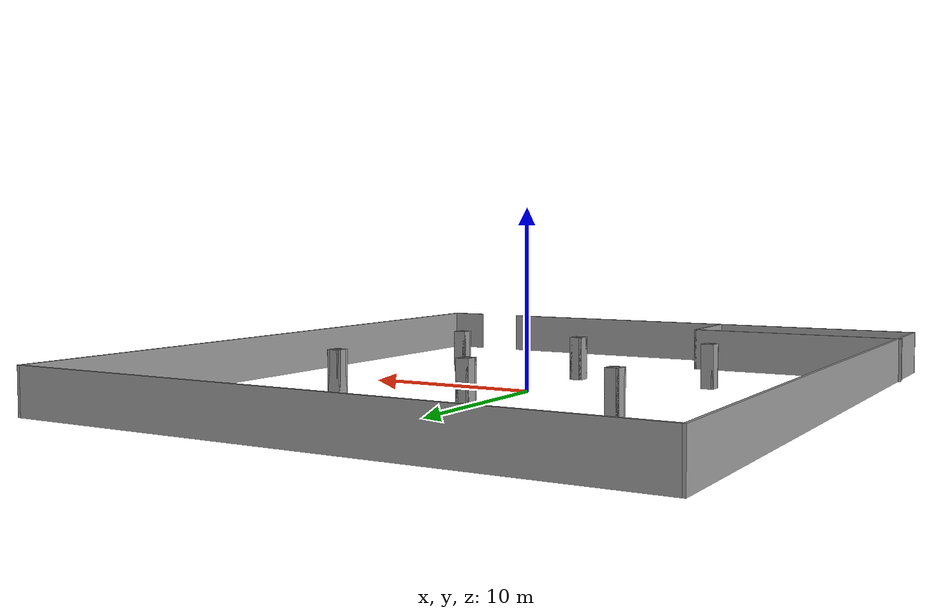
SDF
<?xml version='1.0'?>
<sdf version='1.7'>
  <model name='Jayan_almacen1'>
    <pose>-0.070024 0.009244 0 0 -0 0</pose>
    <link name='Wall_0'>
      <collision name='Wall_0_Collision'>
        <geometry>
          <box>
            <size>28.25 0.15 2.5</size>
          </box>
        </geometry>
        <pose>0 0 1.25 0 -0 0</pose>
      </collision>
      <visual name='Wall_0_Visual'>
        <pose>0 0 1.25 0 -0 0</pose>
        <geometry>
          <box>
            <size>28.25 0.15 2.5</size>
          </box>
        </geometry>
        <material>
          <script>
            <uri>file://media/materials/scripts/gazebo.material</uri>
            <name>Gazebo/Grey</name>
          </script>
          <ambient>1 1 1 1</ambient>
        </material>
        <meta>
          <layer>0</layer>
        </meta>
      </visual>
      <pose>-2.54661 -19.0194 0 0 -0 3.14159</pose>
    </link>
    <link name='Wall_1'>
      <collision name='Wall_1_Collision'>
        <geometry>
          <box>
            <size>38.25 0.15 2.5</size>
          </box>
        </geometry>
        <pose>0 0 1.25 0 -0 0</pose>
      </collision>
      <visual name='Wall_1_Visual'>
        <pose>0 0 1.25 0 -0 0</pose>
        <geometry>
          <box>
            <size>38.25 0.15 2.5</size>
          </box>
        </geometry>
        <material>
          <script>
            <uri>file://media/materials/scripts/gazebo.material</uri>
            <name>Gazebo/Grey</name>
          </script>
          <ambient>1 1 1 1</ambient>
        </material>
        <meta>
          <layer>0</layer>
        </meta>
      </visual>
      <pose>-16.5966 0.030636 0 0 -0 1.5708</pose>
    </link>
    <link name='Wall_11'>
      <collision name='Wall_11_Collision'>
        <geometry>
          <box>
            <size>0.75 0.15 2.5</size>
          </box>
        </geometry>
        <pose>0 0 1.25 0 -0 0</pose>
      </collision>
      <visual name='Wall_11_Visual'>
        <pose>0 0 1.25 0 -0 0</pose>
        <geometry>
          <box>
            <size>0.75 0.15 2.5</size>
          </box>
        </geometry>
        <material>
          <script>
            <uri>file://media/materials/scripts/gazebo.material</uri>
            <name>Gazebo/Grey</name>
          </script>
          <ambient>1 1 1 1</ambient>
        </material>
        <meta>
          <layer>0</layer>
        </meta>
      </visual>
      <pose>-8.37145 -6.24499 0 0 -0 1.5708</pose>
    </link>
    <link name='Wall_12'>
      <collision name='Wall_12_Collision'>
        <geometry>
          <box>
            <size>0.75 0.15 2.5</size>
          </box>
        </geometry>
        <pose>0 0 1.25 0 -0 0</pose>
      </collision>
      <visual name='Wall_12_Visual'>
        <pose>0 0 1.25 0 -0 0</pose>
        <geometry>
          <box>
            <size>0.75 0.15 2.5</size>
          </box>
        </geometry>
        <material>
          <script>
            <uri>file://media/materials/scripts/gazebo.material</uri>
            <name>Gazebo/Grey</name>
          </script>
          <ambient>1 1 1 1</ambient>
        </material>
        <meta>
          <layer>0</layer>
        </meta>
      </visual>
      <pose>-8.07145 -5.94499 0 0 -0 0</pose>
    </link>
    <link name='Wall_13'>
      <collision name='Wall_13_Collision'>
        <geometry>
          <box>
            <size>0.75 0.15 2.5</size>
          </box>
        </geometry>
        <pose>0 0 1.25 0 -0 0</pose>
      </collision>
      <visual name='Wall_13_Visual'>
        <pose>0 0 1.25 0 -0 0</pose>
        <geometry>
          <box>
            <size>0.75 0.15 2.5</size>
          </box>
        </geometry>
        <material>
          <script>
            <uri>file://media/materials/scripts/gazebo.material</uri>
            <name>Gazebo/Grey</name>
          </script>
          <ambient>1 1 1 1</ambient>
        </material>
        <meta>
          <layer>0</layer>
        </meta>
      </visual>
      <pose>-7.77145 -6.24499 0 0 -0 -1.5708</pose>
    </link>
    <link name='Wall_14'>
      <collision name='Wall_14_Collision'>
        <geometry>
          <box>
            <size>0.75 0.15 2.5</size>
          </box>
        </geometry>
        <pose>0 0 1.25 0 -0 0</pose>
      </collision>
      <visual name='Wall_14_Visual'>
        <pose>0 0 1.25 0 -0 0</pose>
        <geometry>
          <box>
            <size>0.75 0.15 2.5</size>
          </box>
        </geometry>
        <material>
          <script>
            <uri>file://media/materials/scripts/gazebo.material</uri>
            <name>Gazebo/Grey</name>
          </script>
          <ambient>1 1 1 1</ambient>
        </material>
        <meta>
          <layer>0</layer>
        </meta>
      </visual>
      <pose>-8.07145 -6.54499 0 0 -0 3.14159</pose>
    </link>
    <link name='Wall_18'>
      <collision name='Wall_18_Collision'>
        <geometry>
          <box>
            <size>0.75 0.15 2.5</size>
          </box>
        </geometry>
        <pose>0 0 1.25 0 -0 0</pose>
      </collision>
      <visual name='Wall_18_Visual'>
        <pose>0 0 1.25 0 -0 0</pose>
        <geometry>
          <box>
            <size>0.75 0.15 2.5</size>
          </box>
        </geometry>
        <material>
          <script>
            <uri>file://media/materials/scripts/gazebo.material</uri>
            <name>Gazebo/Grey</name>
          </script>
          <ambient>1 1 1 1</ambient>
        </material>
        <meta>
          <layer>0</layer>
        </meta>
      </visual>
      <pose>-0.227782 -6.22231 0 0 -0 1.5708</pose>
    </link>
    <link name='Wall_19'>
      <collision name='Wall_19_Collision'>
        <geometry>
          <box>
            <size>0.75 0.15 2.5</size>
          </box>
        </geometry>
        <pose>0 0 1.25 0 -0 0</pose>
      </collision>
      <visual name='Wall_19_Visual'>
        <pose>0 0 1.25 0 -0 0</pose>
        <geometry>
          <box>
            <size>0.75 0.15 2.5</size>
          </box>
        </geometry>
        <material>
          <script>
            <uri>file://media/materials/scripts/gazebo.material</uri>
            <name>Gazebo/Grey</name>
          </script>
          <ambient>1 1 1 1</ambient>
        </material>
        <meta>
          <layer>0</layer>
        </meta>
      </visual>
      <pose>0.072218 -5.92231 0 0 -0 0</pose>
    </link>
    <link name='Wall_2'>
      <collision name='Wall_2_Collision'>
        <geometry>
          <box>
            <size>33.5 0.15 2.5</size>
          </box>
        </geometry>
        <pose>0 0 1.25 0 -0 0</pose>
      </collision>
      <visual name='Wall_2_Visual'>
        <pose>0 0 1.25 0 -0 0</pose>
        <geometry>
          <box>
            <size>33.5 0.15 2.5</size>
          </box>
        </geometry>
        <material>
          <script>
            <uri>file://media/materials/scripts/gazebo.material</uri>
            <name>Gazebo/Grey</name>
          </script>
          <ambient>1 1 1 1</ambient>
        </material>
        <meta>
          <layer>0</layer>
        </meta>
      </visual>
      <pose>0.078386 19.0806 0 0 -0 0</pose>
    </link>
    <link name='Wall_20'>
      <collision name='Wall_20_Collision'>
        <geometry>
          <box>
            <size>0.75 0.15 2.5</size>
          </box>
        </geometry>
        <pose>0 0 1.25 0 -0 0</pose>
      </collision>
      <visual name='Wall_20_Visual'>
        <pose>0 0 1.25 0 -0 0</pose>
        <geometry>
          <box>
            <size>0.75 0.15 2.5</size>
          </box>
        </geometry>
        <material>
          <script>
            <uri>file://media/materials/scripts/gazebo.material</uri>
            <name>Gazebo/Grey</name>
          </script>
          <ambient>1 1 1 1</ambient>
        </material>
        <meta>
          <layer>0</layer>
        </meta>
      </visual>
      <pose>0.372218 -6.22231 0 0 -0 -1.5708</pose>
    </link>
    <link name='Wall_21'>
      <collision name='Wall_21_Collision'>
        <geometry>
          <box>
            <size>0.75 0.15 2.5</size>
          </box>
        </geometry>
        <pose>0 0 1.25 0 -0 0</pose>
      </collision>
      <visual name='Wall_21_Visual'>
        <pose>0 0 1.25 0 -0 0</pose>
        <geometry>
          <box>
            <size>0.75 0.15 2.5</size>
          </box>
        </geometry>
        <material>
          <script>
            <uri>file://media/materials/scripts/gazebo.material</uri>
            <name>Gazebo/Grey</name>
          </script>
          <ambient>1 1 1 1</ambient>
        </material>
        <meta>
          <layer>0</layer>
        </meta>
      </visual>
      <pose>0.072218 -6.52231 0 0 -0 3.14159</pose>
    </link>
    <link name='Wall_23'>
      <collision name='Wall_23_Collision'>
        <geometry>
          <box>
            <size>0.75 0.15 2.5</size>
          </box>
        </geometry>
        <pose>0 0 1.25 0 -0 0</pose>
      </collision>
      <visual name='Wall_23_Visual'>
        <pose>0 0 1.25 0 -0 0</pose>
        <geometry>
          <box>
            <size>0.75 0.15 2.5</size>
          </box>
        </geometry>
        <material>
          <script>
            <uri>file://media/materials/scripts/gazebo.material</uri>
            <name>Gazebo/Grey</name>
          </script>
          <ambient>1 1 1 1</ambient>
        </material>
        <meta>
          <layer>0</layer>
        </meta>
      </visual>
      <pose>7.84783 -6.22231 0 0 -0 1.5708</pose>
    </link>
    <link name='Wall_24'>
      <collision name='Wall_24_Collision'>
        <geometry>
          <box>
            <size>0.75 0.15 2.5</size>
          </box>
        </geometry>
        <pose>0 0 1.25 0 -0 0</pose>
      </collision>
      <visual name='Wall_24_Visual'>
        <pose>0 0 1.25 0 -0 0</pose>
        <geometry>
          <box>
            <size>0.75 0.15 2.5</size>
          </box>
        </geometry>
        <material>
          <script>
            <uri>file://media/materials/scripts/gazebo.material</uri>
            <name>Gazebo/Grey</name>
          </script>
          <ambient>1 1 1 1</ambient>
        </material>
        <meta>
          <layer>0</layer>
        </meta>
      </visual>
      <pose>8.14783 -5.92231 0 0 -0 0</pose>
    </link>
    <link name='Wall_25'>
      <collision name='Wall_25_Collision'>
        <geometry>
          <box>
            <size>0.75 0.15 2.5</size>
          </box>
        </geometry>
        <pose>0 0 1.25 0 -0 0</pose>
      </collision>
      <visual name='Wall_25_Visual'>
        <pose>0 0 1.25 0 -0 0</pose>
        <geometry>
          <box>
            <size>0.75 0.15 2.5</size>
          </box>
        </geometry>
        <material>
          <script>
            <uri>file://media/materials/scripts/gazebo.material</uri>
            <name>Gazebo/Grey</name>
          </script>
          <ambient>1 1 1 1</ambient>
        </material>
        <meta>
          <layer>0</layer>
        </meta>
      </visual>
      <pose>8.44783 -6.22231 0 0 -0 -1.5708</pose>
    </link>
    <link name='Wall_26'>
      <collision name='Wall_26_Collision'>
        <geometry>
          <box>
            <size>0.75 0.15 2.5</size>
          </box>
        </geometry>
        <pose>0 0 1.25 0 -0 0</pose>
      </collision>
      <visual name='Wall_26_Visual'>
        <pose>0 0 1.25 0 -0 0</pose>
        <geometry>
          <box>
            <size>0.75 0.15 2.5</size>
          </box>
        </geometry>
        <material>
          <script>
            <uri>file://media/materials/scripts/gazebo.material</uri>
            <name>Gazebo/Grey</name>
          </script>
          <ambient>1 1 1 1</ambient>
        </material>
        <meta>
          <layer>0</layer>
        </meta>
      </visual>
      <pose>8.14783 -6.52231 0 0 -0 3.14159</pose>
    </link>
    <link name='Wall_28'>
      <collision name='Wall_28_Collision'>
        <geometry>
          <box>
            <size>0.75 0.15 2.5</size>
          </box>
        </geometry>
        <pose>0 0 1.25 0 -0 0</pose>
      </collision>
      <visual name='Wall_28_Visual'>
        <pose>0 0 1.25 0 -0 0</pose>
        <geometry>
          <box>
            <size>0.75 0.15 2.5</size>
          </box>
        </geometry>
        <material>
          <script>
            <uri>file://media/materials/scripts/gazebo.material</uri>
            <name>Gazebo/Grey</name>
          </script>
          <ambient>1 1 1 1</ambient>
        </material>
        <meta>
          <layer>0</layer>
        </meta>
      </visual>
      <pose>-8.35395 6.17711 0 0 -0 1.5708</pose>
    </link>
    <link name='Wall_29'>
      <collision name='Wall_29_Collision'>
        <geometry>
          <box>
            <size>0.75 0.15 2.5</size>
          </box>
        </geometry>
        <pose>0 0 1.25 0 -0 0</pose>
      </collision>
      <visual name='Wall_29_Visual'>
        <pose>0 0 1.25 0 -0 0</pose>
        <geometry>
          <box>
            <size>0.75 0.15 2.5</size>
          </box>
        </geometry>
        <material>
          <script>
            <uri>file://media/materials/scripts/gazebo.material</uri>
            <name>Gazebo/Grey</name>
          </script>
          <ambient>1 1 1 1</ambient>
        </material>
        <meta>
          <layer>0</layer>
        </meta>
      </visual>
      <pose>-8.05395 6.47711 0 0 -0 0</pose>
    </link>
    <link name='Wall_3'>
      <collision name='Wall_3_Collision'>
        <geometry>
          <box>
            <size>38 0.15 2.5</size>
          </box>
        </geometry>
        <pose>0 0 1.25 0 -0 0</pose>
      </collision>
      <visual name='Wall_3_Visual'>
        <pose>0 0 1.25 0 -0 0</pose>
        <geometry>
          <box>
            <size>38 0.15 2.5</size>
          </box>
        </geometry>
        <material>
          <script>
            <uri>file://media/materials/scripts/gazebo.material</uri>
            <name>Gazebo/Grey</name>
          </script>
          <ambient>1 1 1 1</ambient>
        </material>
        <meta>
          <layer>0</layer>
        </meta>
      </visual>
      <pose>16.7534 0.155636 0 0 -0 -1.5708</pose>
    </link>
    <link name='Wall_30'>
      <collision name='Wall_30_Collision'>
        <geometry>
          <box>
            <size>0.75 0.15 2.5</size>
          </box>
        </geometry>
        <pose>0 0 1.25 0 -0 0</pose>
      </collision>
      <visual name='Wall_30_Visual'>
        <pose>0 0 1.25 0 -0 0</pose>
        <geometry>
          <box>
            <size>0.75 0.15 2.5</size>
          </box>
        </geometry>
        <material>
          <script>
            <uri>file://media/materials/scripts/gazebo.material</uri>
            <name>Gazebo/Grey</name>
          </script>
          <ambient>1 1 1 1</ambient>
        </material>
        <meta>
          <layer>0</layer>
        </meta>
      </visual>
      <pose>-7.75395 6.17711 0 0 -0 -1.5708</pose>
    </link>
    <link name='Wall_31'>
      <collision name='Wall_31_Collision'>
        <geometry>
          <box>
            <size>0.75 0.15 2.5</size>
          </box>
        </geometry>
        <pose>0 0 1.25 0 -0 0</pose>
      </collision>
      <visual name='Wall_31_Visual'>
        <pose>0 0 1.25 0 -0 0</pose>
        <geometry>
          <box>
            <size>0.75 0.15 2.5</size>
          </box>
        </geometry>
        <material>
          <script>
            <uri>file://media/materials/scripts/gazebo.material</uri>
            <name>Gazebo/Grey</name>
          </script>
          <ambient>1 1 1 1</ambient>
        </material>
        <meta>
          <layer>0</layer>
        </meta>
      </visual>
      <pose>-8.05395 5.87711 0 0 -0 3.14159</pose>
    </link>
    <link name='Wall_33'>
      <collision name='Wall_33_Collision'>
        <geometry>
          <box>
            <size>0.75 0.15 2.5</size>
          </box>
        </geometry>
        <pose>0 0 1.25 0 -0 0</pose>
      </collision>
      <visual name='Wall_33_Visual'>
        <pose>0 0 1.25 0 -0 0</pose>
        <geometry>
          <box>
            <size>0.75 0.15 2.5</size>
          </box>
        </geometry>
        <material>
          <script>
            <uri>file://media/materials/scripts/gazebo.material</uri>
            <name>Gazebo/Grey</name>
          </script>
          <ambient>1 1 1 1</ambient>
        </material>
        <meta>
          <layer>0</layer>
        </meta>
      </visual>
      <pose>-0.22705 6.19684 0 0 -0 1.5708</pose>
    </link>
    <link name='Wall_34'>
      <collision name='Wall_34_Collision'>
        <geometry>
          <box>
            <size>0.75 0.15 2.5</size>
          </box>
        </geometry>
        <pose>0 0 1.25 0 -0 0</pose>
      </collision>
      <visual name='Wall_34_Visual'>
        <pose>0 0 1.25 0 -0 0</pose>
        <geometry>
          <box>
            <size>0.75 0.15 2.5</size>
          </box>
        </geometry>
        <material>
          <script>
            <uri>file://media/materials/scripts/gazebo.material</uri>
            <name>Gazebo/Grey</name>
          </script>
          <ambient>1 1 1 1</ambient>
        </material>
        <meta>
          <layer>0</layer>
        </meta>
      </visual>
      <pose>0.07295 6.49684 0 0 -0 0</pose>
    </link>
    <link name='Wall_35'>
      <collision name='Wall_35_Collision'>
        <geometry>
          <box>
            <size>0.75 0.15 2.5</size>
          </box>
        </geometry>
        <pose>0 0 1.25 0 -0 0</pose>
      </collision>
      <visual name='Wall_35_Visual'>
        <pose>0 0 1.25 0 -0 0</pose>
        <geometry>
          <box>
            <size>0.75 0.15 2.5</size>
          </box>
        </geometry>
        <material>
          <script>
            <uri>file://media/materials/scripts/gazebo.material</uri>
            <name>Gazebo/Grey</name>
          </script>
          <ambient>1 1 1 1</ambient>
        </material>
        <meta>
          <layer>0</layer>
        </meta>
      </visual>
      <pose>0.37295 6.19684 0 0 -0 -1.5708</pose>
    </link>
    <link name='Wall_36'>
      <collision name='Wall_36_Collision'>
        <geometry>
          <box>
            <size>0.75 0.15 2.5</size>
          </box>
        </geometry>
        <pose>0 0 1.25 0 -0 0</pose>
      </collision>
      <visual name='Wall_36_Visual'>
        <pose>0 0 1.25 0 -0 0</pose>
        <geometry>
          <box>
            <size>0.75 0.15 2.5</size>
          </box>
        </geometry>
        <material>
          <script>
            <uri>file://media/materials/scripts/gazebo.material</uri>
            <name>Gazebo/Grey</name>
          </script>
          <ambient>1 1 1 1</ambient>
        </material>
        <meta>
          <layer>0</layer>
        </meta>
      </visual>
      <pose>0.07295 5.89684 0 0 -0 3.14159</pose>
    </link>
    <link name='Wall_38'>
      <collision name='Wall_38_Collision'>
        <geometry>
          <box>
            <size>0.75 0.15 2.5</size>
          </box>
        </geometry>
        <pose>0 0 1.25 0 -0 0</pose>
      </collision>
      <visual name='Wall_38_Visual'>
        <pose>0 0 1.25 0 -0 0</pose>
        <geometry>
          <box>
            <size>0.75 0.15 2.5</size>
          </box>
        </geometry>
        <material>
          <script>
            <uri>file://media/materials/scripts/gazebo.material</uri>
            <name>Gazebo/Grey</name>
          </script>
          <ambient>1 1 1 1</ambient>
        </material>
        <meta>
          <layer>0</layer>
        </meta>
      </visual>
      <pose>7.88012 6.13766 0 0 -0 1.5708</pose>
    </link>
    <link name='Wall_39'>
      <collision name='Wall_39_Collision'>
        <geometry>
          <box>
            <size>0.75 0.15 2.5</size>
          </box>
        </geometry>
        <pose>0 0 1.25 0 -0 0</pose>
      </collision>
      <visual name='Wall_39_Visual'>
        <pose>0 0 1.25 0 -0 0</pose>
        <geometry>
          <box>
            <size>0.75 0.15 2.5</size>
          </box>
        </geometry>
        <material>
          <script>
            <uri>file://media/materials/scripts/gazebo.material</uri>
            <name>Gazebo/Grey</name>
          </script>
          <ambient>1 1 1 1</ambient>
        </material>
        <meta>
          <layer>0</layer>
        </meta>
      </visual>
      <pose>8.18012 6.43766 0 0 -0 0</pose>
    </link>
    <link name='Wall_40'>
      <collision name='Wall_40_Collision'>
        <geometry>
          <box>
            <size>0.75 0.15 2.5</size>
          </box>
        </geometry>
        <pose>0 0 1.25 0 -0 0</pose>
      </collision>
      <visual name='Wall_40_Visual'>
        <pose>0 0 1.25 0 -0 0</pose>
        <geometry>
          <box>
            <size>0.75 0.15 2.5</size>
          </box>
        </geometry>
        <material>
          <script>
            <uri>file://media/materials/scripts/gazebo.material</uri>
            <name>Gazebo/Grey</name>
          </script>
          <ambient>1 1 1 1</ambient>
        </material>
        <meta>
          <layer>0</layer>
        </meta>
      </visual>
      <pose>8.48012 6.13766 0 0 -0 -1.5708</pose>
    </link>
    <link name='Wall_41'>
      <collision name='Wall_41_Collision'>
        <geometry>
          <box>
            <size>0.75 0.15 2.5</size>
          </box>
        </geometry>
        <pose>0 0 1.25 0 -0 0</pose>
      </collision>
      <visual name='Wall_41_Visual'>
        <pose>0 0 1.25 0 -0 0</pose>
        <geometry>
          <box>
            <size>0.75 0.15 2.5</size>
          </box>
        </geometry>
        <material>
          <script>
            <uri>file://media/materials/scripts/gazebo.material</uri>
            <name>Gazebo/Grey</name>
          </script>
          <ambient>1 1 1 1</ambient>
        </material>
        <meta>
          <layer>0</layer>
        </meta>
      </visual>
      <pose>8.18012 5.83766 0 0 -0 3.14159</pose>
    </link>
    <link name='Wall_6'>
      <collision name='Wall_6_Collision'>
        <geometry>
          <box>
            <size>2.25 0.15 2.5</size>
          </box>
        </geometry>
        <pose>0 0 1.25 0 -0 0</pose>
      </collision>
      <visual name='Wall_6_Visual'>
        <pose>0 0 1.25 0 -0 0</pose>
        <geometry>
          <box>
            <size>2.25 0.15 2.5</size>
          </box>
        </geometry>
        <material>
          <script>
            <uri>file://media/materials/scripts/gazebo.material</uri>
            <name>Gazebo/Grey</name>
          </script>
          <ambient>1 1 1 1</ambient>
        </material>
        <meta>
          <layer>0</layer>
        </meta>
      </visual>
      <pose>15.6427 -19.0806 0 0 -0 0</pose>
    </link>
    <link name='Wall_8'>
      <collision name='Wall_8_Collision'>
        <geometry>
          <box>
            <size>12.75 0.15 2.5</size>
          </box>
        </geometry>
        <pose>0 0 1.25 0 -0 0</pose>
      </collision>
      <visual name='Wall_8_Visual'>
        <pose>0 0 1.25 0 -0 0</pose>
        <geometry>
          <box>
            <size>12.75 0.15 2.5</size>
          </box>
        </geometry>
        <material>
          <script>
            <uri>file://media/materials/scripts/gazebo.material</uri>
            <name>Gazebo/Grey</name>
          </script>
          <ambient>1 1 1 1</ambient>
        </material>
        <meta>
          <layer>0</layer>
        </meta>
      </visual>
      <pose>-10.4534 -14.3811 0 0 -0 0</pose>
    </link>
    <link name='Wall_9'>
      <collision name='Wall_9_Collision'>
        <geometry>
          <box>
            <size>4.75 0.15 2.5</size>
          </box>
        </geometry>
        <pose>0 0 1.25 0 -0 0</pose>
      </collision>
      <visual name='Wall_9_Visual'>
        <pose>0 0 1.25 0 -0 0</pose>
        <geometry>
          <box>
            <size>4.75 0.15 2.5</size>
          </box>
        </geometry>
        <material>
          <script>
            <uri>file://media/materials/scripts/gazebo.material</uri>
            <name>Gazebo/Grey</name>
          </script>
          <ambient>1 1 1 1</ambient>
        </material>
        <meta>
          <layer>0</layer>
        </meta>
      </visual>
      <pose>-4.15339 -16.6811 0 0 -0 -1.5708</pose>
    </link>
    <static>1</static>
  </model>
</sdf>
